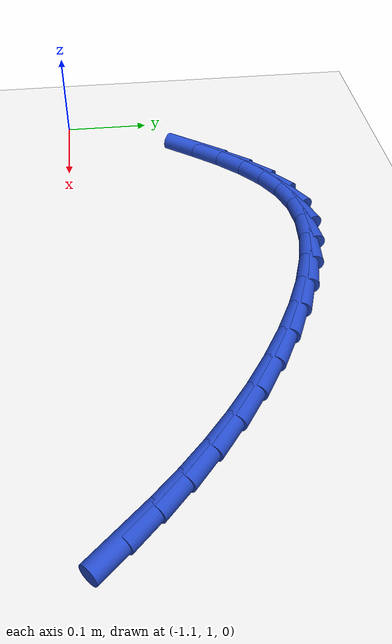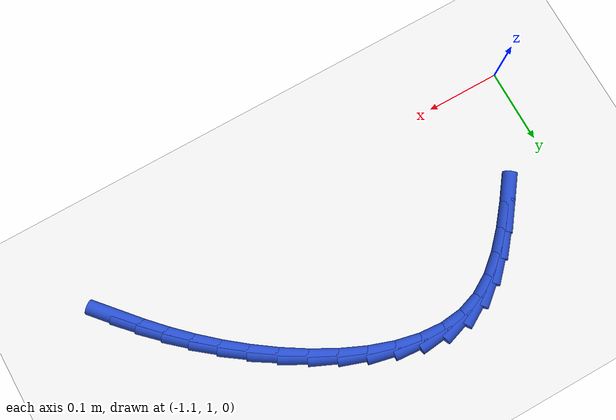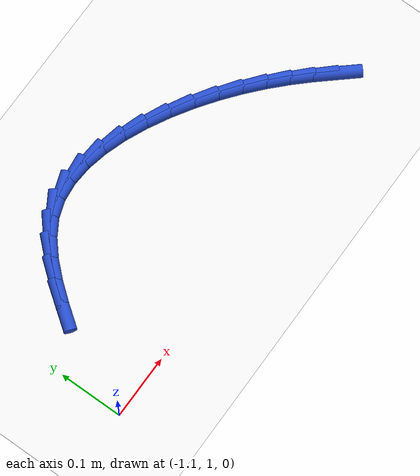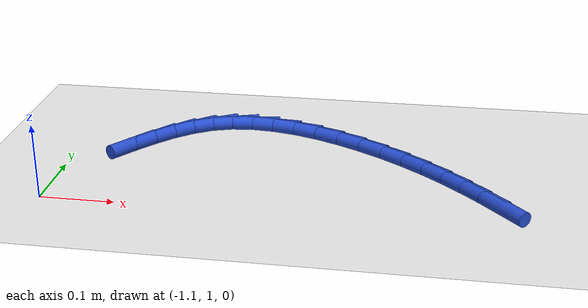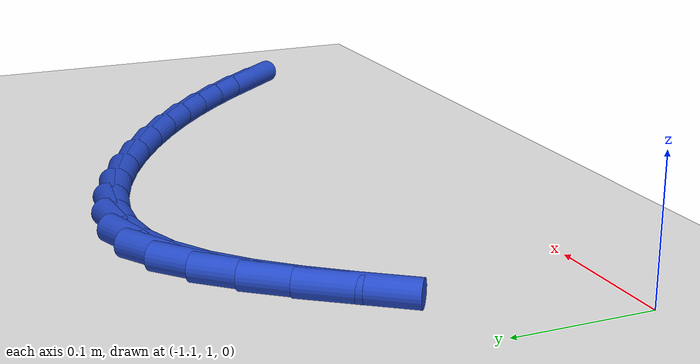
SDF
<sdf version="1.6">
 <world name="default">
  <model name="ground_plane">
   <static>1</static>
   <link name="link">
    <collision name="collision">
     <geometry><plane><normal>0 0 1</normal><size>100 100</size></plane></geometry>
     <surface><friction><ode><mu>100</mu><mu2>50</mu2></ode></friction></surface>
    </collision>
    <visual name="visual">
     <cast_shadows>0</cast_shadows>
     <geometry><plane><normal>0 0 1</normal><size>100 100</size></plane></geometry>
     <material>
      <script><uri>file://media/materials/scripts/gazebo.material</uri><name>Gazebo/WhiteGlow</name></script>
     </material>
    </visual>
   </link>
  </model>
  <model name="line">
   <link name="link_35">
    <pose>-0.5117186097251047 1.043425513549945 0.01 0 1.57 -0.8524047128776496</pose>
    <collision name="collision">
     <geometry><cylinder><radius>0.01</radius><length>0.08</length></cylinder></geometry>
    </collision>
    <visual name="visual">
     <material>
      <script><name>Gazebo/Blue</name><uri>file://media/materials/scripts/gazebo.material</uri></script>
     </material>
     <geometry><cylinder><radius>0.01</radius><length>0.08</length></cylinder></geometry>
    </visual>
   </link>
   <link name="link_36">
    <pose>-0.5338246831514674 1.0687119572714385 0.01 0 1.57 -0.8131090265345018</pose>
    <collision name="collision">
     <geometry><cylinder><radius>0.01</radius><length>0.08</length></cylinder></geometry>
    </collision>
    <visual name="visual">
     <material>
      <script><name>Gazebo/Blue</name><uri>file://media/materials/scripts/gazebo.material</uri></script>
     </material>
     <geometry><cylinder><radius>0.01</radius><length>0.08</length></cylinder></geometry>
    </visual>
   </link>
   <link name="link_37">
    <pose>-0.5571797169507671 1.0933986084927616 0.01 0 1.57 -0.7691002343548958</pose>
    <collision name="collision">
     <geometry><cylinder><radius>0.01</radius><length>0.08</length></cylinder></geometry>
    </collision>
    <visual name="visual">
     <material>
      <script><name>Gazebo/Blue</name><uri>file://media/materials/scripts/gazebo.material</uri></script>
     </material>
     <geometry><cylinder><radius>0.01</radius><length>0.08</length></cylinder></geometry>
    </visual>
   </link>
   <link name="link_38">
    <pose>-0.5819933943526411 1.1174163641901216 0.01 0 1.57 -0.7211352103608009</pose>
    <collision name="collision">
     <geometry><cylinder><radius>0.01</radius><length>0.08</length></cylinder></geometry>
    </collision>
    <visual name="visual">
     <material>
      <script><name>Gazebo/Blue</name><uri>file://media/materials/scripts/gazebo.material</uri></script>
     </material>
     <geometry><cylinder><radius>0.01</radius><length>0.08</length></cylinder></geometry>
    </visual>
   </link>
   <link name="link_39">
    <pose>-0.6084753985867271 1.1406961213397255 0.01 0 1.57 -0.6700934895207922</pose>
    <collision name="collision">
     <geometry><cylinder><radius>0.01</radius><length>0.08</length></cylinder></geometry>
    </collision>
    <visual name="visual">
     <material>
      <script><name>Gazebo/Blue</name><uri>file://media/materials/scripts/gazebo.material</uri></script>
     </material>
     <geometry><cylinder><radius>0.01</radius><length>0.08</length></cylinder></geometry>
    </visual>
   </link>
   <link name="link_40">
    <pose>-0.6368354128826623 1.1631687769177808 0.01 0 1.57 -0.6167879068671015</pose>
    <collision name="collision">
     <geometry><cylinder><radius>0.01</radius><length>0.08</length></cylinder></geometry>
    </collision>
    <visual name="visual">
     <material>
      <script><name>Gazebo/Blue</name><uri>file://media/materials/scripts/gazebo.material</uri></script>
     </material>
     <geometry><cylinder><radius>0.01</radius><length>0.08</length></cylinder></geometry>
    </visual>
   </link>
   <link name="link_41">
    <pose>-0.6672229803817051 1.184715716646145 0.01 0 1.57 -0.5598310138124964</pose>
    <collision name="collision">
     <geometry><cylinder><radius>0.01</radius><length>0.08</length></cylinder></geometry>
    </collision>
    <visual name="visual">
     <material>
      <script><name>Gazebo/Blue</name><uri>file://media/materials/scripts/gazebo.material</uri></script>
     </material>
     <geometry><cylinder><radius>0.01</radius><length>0.08</length></cylinder></geometry>
    </visual>
   </link>
   <link name="link_42">
    <pose>-0.6993100388149439 1.204825130234183 0.01 0 1.57 -0.49578492043419625</pose>
    <collision name="collision">
     <geometry><cylinder><radius>0.01</radius><length>0.08</length></cylinder></geometry>
    </collision>
    <visual name="visual">
     <material>
      <script><name>Gazebo/Blue</name><uri>file://media/materials/scripts/gazebo.material</uri></script>
     </material>
     <geometry><cylinder><radius>0.01</radius><length>0.08</length></cylinder></geometry>
    </visual>
   </link>
   <link name="link_43">
    <pose>-0.732540772633907 1.2227977059948165 0.01 0 1.57 -0.4208241884931734</pose>
    <collision name="collision">
     <geometry><cylinder><radius>0.01</radius><length>0.08</length></cylinder></geometry>
    </collision>
    <visual name="visual">
     <material>
      <script><name>Gazebo/Blue</name><uri>file://media/materials/scripts/gazebo.material</uri></script>
     </material>
     <geometry><cylinder><radius>0.01</radius><length>0.08</length></cylinder></geometry>
    </visual>
   </link>
   <link name="link_44">
    <pose>-0.7663579637400014 1.2379329775699712 0.01 0 1.57 -0.3301125623097931</pose>
    <collision name="collision">
     <geometry><cylinder><radius>0.01</radius><length>0.08</length></cylinder></geometry>
    </collision>
    <visual name="visual">
     <material>
      <script><name>Gazebo/Blue</name><uri>file://media/materials/scripts/gazebo.material</uri></script>
     </material>
     <geometry><cylinder><radius>0.01</radius><length>0.08</length></cylinder></geometry>
    </visual>
   </link>
   <link name="link_45">
    <pose>-0.8002043940346338 1.2495304786015733 0.01 0 1.57 -0.21738622132233412</pose>
    <collision name="collision">
     <geometry><cylinder><radius>0.01</radius><length>0.08</length></cylinder></geometry>
    </collision>
    <visual name="visual">
     <material>
      <script><name>Gazebo/Blue</name><uri>file://media/materials/scripts/gazebo.material</uri></script>
     </material>
     <geometry><cylinder><radius>0.01</radius><length>0.08</length></cylinder></geometry>
    </visual>
   </link>
   <link name="link_46">
    <pose>-0.8335228454192106 1.2568897427315466 0.01 0 1.57 -0.07495445857999648</pose>
    <collision name="collision">
     <geometry><cylinder><radius>0.01</radius><length>0.08</length></cylinder></geometry>
    </collision>
    <visual name="visual">
     <material>
      <script><name>Gazebo/Blue</name><uri>file://media/materials/scripts/gazebo.material</uri></script>
     </material>
     <geometry><cylinder><radius>0.01</radius><length>0.08</length></cylinder></geometry>
    </visual>
   </link>
   <link name="link_47">
    <pose>-0.865756099795139 1.2593103036018176 0.01 0 1.57 0.10482910123340287</pose>
    <collision name="collision">
     <geometry><cylinder><radius>0.01</radius><length>0.08</length></cylinder></geometry>
    </collision>
    <visual name="visual">
     <material>
      <script><name>Gazebo/Blue</name><uri>file://media/materials/scripts/gazebo.material</uri></script>
     </material>
     <geometry><cylinder><radius>0.01</radius><length>0.08</length></cylinder></geometry>
    </visual>
   </link>
   <link name="link_48">
    <pose>-0.8963469390638253 1.256091694854311 0.01 0 1.57 0.32334840114601204</pose>
    <collision name="collision">
     <geometry><cylinder><radius>0.01</radius><length>0.08</length></cylinder></geometry>
    </collision>
    <visual name="visual">
     <material>
      <script><name>Gazebo/Blue</name><uri>file://media/materials/scripts/gazebo.material</uri></script>
     </material>
     <geometry><cylinder><radius>0.01</radius><length>0.08</length></cylinder></geometry>
    </visual>
   </link>
   <link name="link_49">
    <pose>-0.9247586474539718 1.246570656738815 0.01 0 1.57 0.5382058156601293</pose>
    <collision name="collision">
     <geometry><cylinder><radius>0.01</radius><length>0.08</length></cylinder></geometry>
    </collision>
    <visual name="visual">
     <material>
      <script><name>Gazebo/Blue</name><uri>file://media/materials/scripts/gazebo.material</uri></script>
     </material>
     <geometry><cylinder><radius>0.01</radius><length>0.08</length></cylinder></geometry>
    </visual>
   </link>
   <link name="link_50">
    <pose>-0.950929878066286 1.230946605383625 0.01 0 1.57 0.7036885023623992</pose>
    <collision name="collision">
     <geometry><cylinder><radius>0.01</radius><length>0.08</length></cylinder></geometry>
    </collision>
    <visual name="visual">
     <material>
      <script><name>Gazebo/Blue</name><uri>file://media/materials/scripts/gazebo.material</uri></script>
     </material>
     <geometry><cylinder><radius>0.01</radius><length>0.08</length></cylinder></geometry>
    </visual>
   </link>
   <link name="link_51">
    <pose>-0.9752767822204232 1.2102854970288819 0.01 0 1.57 0.8197576921429266</pose>
    <collision name="collision">
     <geometry><cylinder><radius>0.01</radius><length>0.08</length></cylinder></geometry>
    </collision>
    <visual name="visual">
     <material>
      <script><name>Gazebo/Blue</name><uri>file://media/materials/scripts/gazebo.material</uri></script>
     </material>
     <geometry><cylinder><radius>0.01</radius><length>0.08</length></cylinder></geometry>
    </visual>
   </link>
   <link name="link_52">
    <pose>-0.9982364394353885 1.1856912673740971 0.01 0 1.57 0.894484077667821</pose>
    <collision name="collision">
     <geometry><cylinder><radius>0.01</radius><length>0.08</length></cylinder></geometry>
    </collision>
    <visual name="visual">
     <material>
      <script><name>Gazebo/Blue</name><uri>file://media/materials/scripts/gazebo.material</uri></script>
     </material>
     <geometry><cylinder><radius>0.01</radius><length>0.08</length></cylinder></geometry>
    </visual>
   </link>
   <link name="link_53">
    <pose>-1.0202459292301882 1.1582678521187832 0.01 0 1.57 0.9353597477938723</pose>
    <collision name="collision">
     <geometry><cylinder><radius>0.01</radius><length>0.08</length></cylinder></geometry>
    </collision>
    <visual name="visual">
     <material>
      <script><name>Gazebo/Blue</name><uri>file://media/materials/scripts/gazebo.material</uri></script>
     </material>
     <geometry><cylinder><radius>0.01</radius><length>0.08</length></cylinder></geometry>
    </visual>
   </link>
  </model>
 </world>
</sdf>
